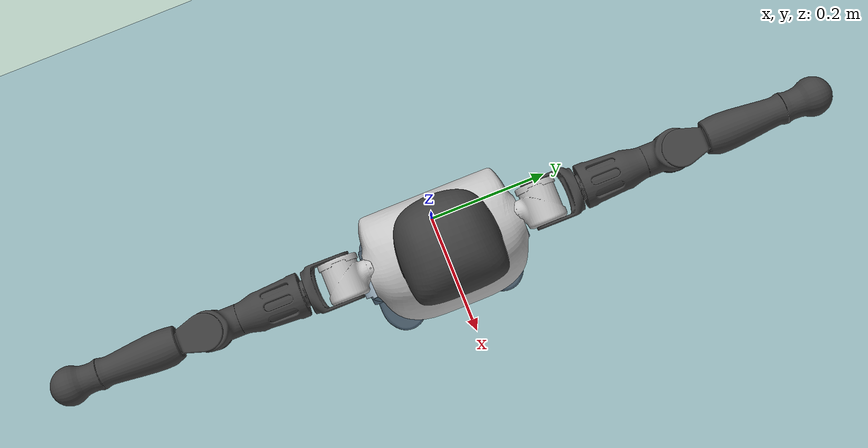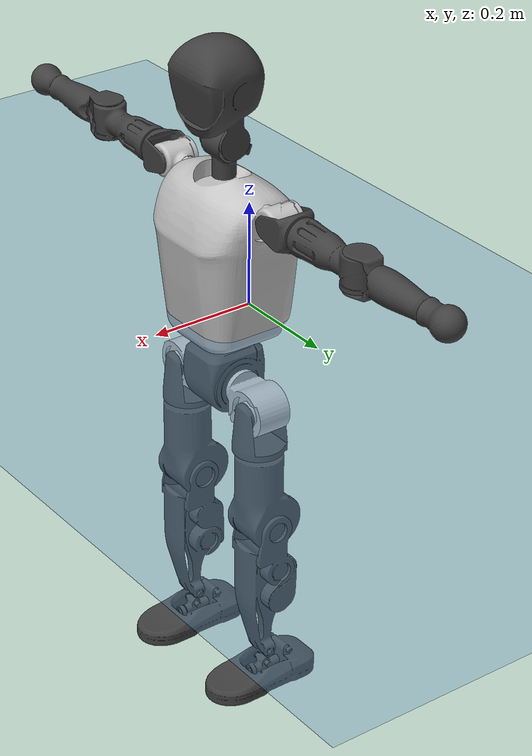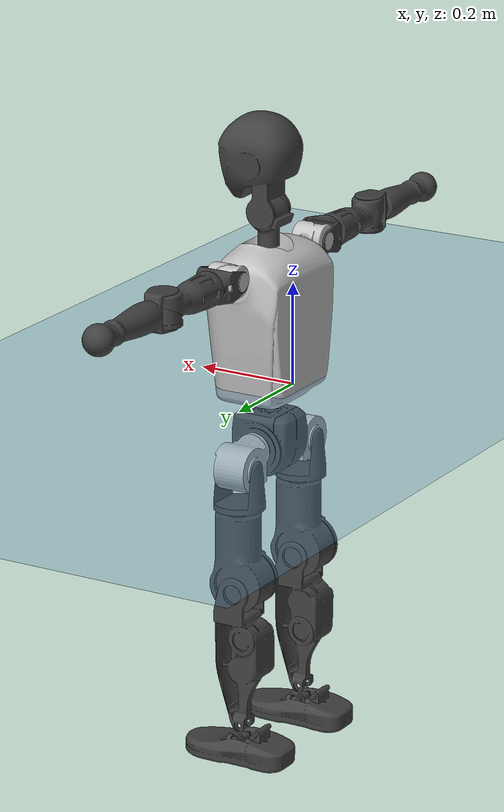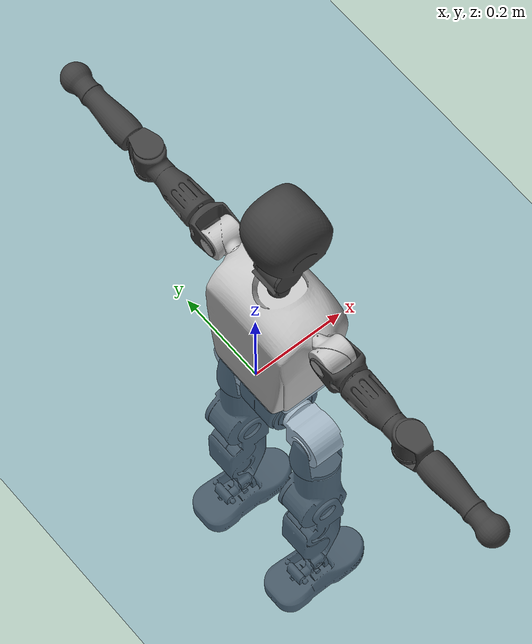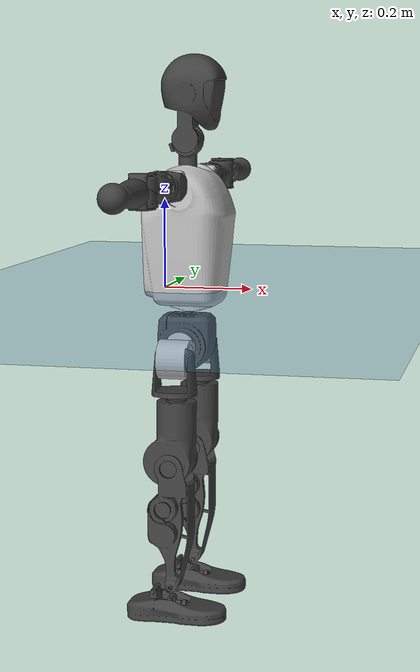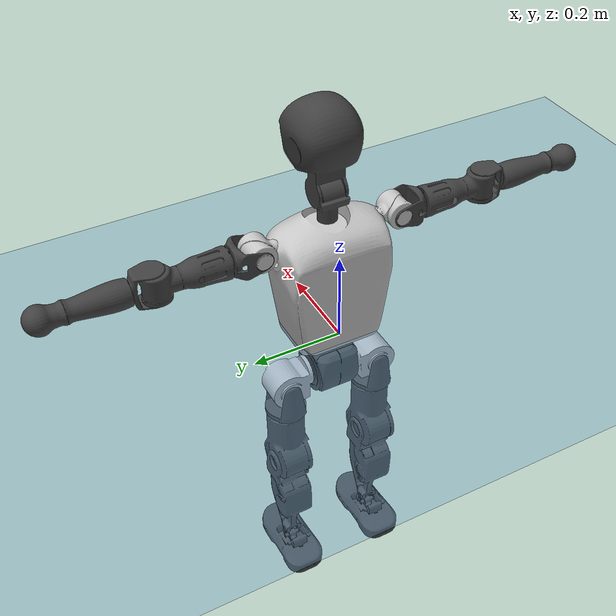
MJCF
<mujoco model="T1">
  <compiler angle="radian" assetdir="assets" balanceinertia="true" inertiafromgeom="false"/>

  <option timestep="0.005" density="1.2" viscosity="2e-05"/>

  <size nkey="1"/>

  <visual>
    <quality shadowsize="8192"/>
    <map shadowclip="0.5"/>
  </visual>

  <default>
    <default class="/">
      <joint armature="0.01" damping="0.01" frictionloss="0.1"/>
      <geom contype="0" conaffinity="0" group="1" solref="-1000 -80"/>
      <site size="0.01 0.005 0.005" group="5"/>
      <general forcelimited="true" biastype="affine" gainprm="25" biasprm="0 -25 -0.6"/>
      <default class="t1">
        <geom rgba="0.25 0.25 0.25 1"/>
        <default class="visual">
          <geom type="mesh" group="2"/>
        </default>
        <default class="collision">
          <geom group="3"/>
        </default>
        <default class="foot">
          <geom size="0.1115 0.05 0.015" type="box" condim="6" group="4" priority="1" solimp="0.015 1 0.015"/>
        </default>
        <default class="reward_collision_sphere">
          <geom group="5" rgba="1 0 0 1"/>
        </default>
      </default>
    </default>
  </default>

  <asset>
    <texture type="skybox" colorspace="auto" name="//unnamed_texture_0" builtin="gradient" rgb1="0.95 0.95 0.95" rgb2="0.95 0.95 0.95" width="100" height="600"/>
    <texture type="2d" colorspace="auto" name="texplane" builtin="checker" rgb1="0.345 0.575 0.748" rgb2="0.345 0.575 0.748" markrgb="1 1 1" width="512" height="512"/>
    <material name="MatPlane" class="/" texture="texplane" texuniform="true" texrepeat="2 2" specular="0.9"/>
    <mesh name="Trunk" class="/" file="Trunk.stl"/>
    <mesh name="H1" class="/" file="H1.stl"/>
    <mesh name="H2" class="/" file="H2.stl"/>
    <mesh name="AL1" class="/" file="AL1.stl"/>
    <mesh name="AL2" class="/" file="AL2.stl"/>
    <mesh name="AL3" class="/" file="AL3.stl"/>
    <mesh name="left_hand_link" class="/" file="left_hand_link.stl"/>
    <mesh name="AR1" class="/" file="AR1.stl"/>
    <mesh name="AR2" class="/" file="AR2.stl"/>
    <mesh name="AR3" class="/" file="AR3.stl"/>
    <mesh name="right_hand_link" class="/" file="right_hand_link.stl"/>
    <mesh name="Waist" class="/" file="Waist.stl"/>
    <mesh name="Hip_Pitch_Left" class="/" file="Hip_Pitch_Left.stl"/>
    <mesh name="Hip_Roll_Left" class="/" file="Hip_Roll_Left.stl"/>
    <mesh name="Hip_Yaw_Left" class="/" file="Hip_Yaw_Left.stl"/>
    <mesh name="Shank_Left" class="/" file="Shank_Left.stl"/>
    <mesh name="Ankle_Cross_Left" class="/" file="Ankle_Cross_Left.stl"/>
    <mesh name="left_foot_link" class="/" file="left_foot_link.stl"/>
    <mesh name="Hip_Pitch_Right" class="/" file="Hip_Pitch_Right.stl"/>
    <mesh name="Hip_Roll_Right" class="/" file="Hip_Roll_Right.stl"/>
    <mesh name="Hip_Yaw_Right" class="/" file="Hip_Yaw_Right.stl"/>
    <mesh name="Shank_Right" class="/" file="Shank_Right.stl"/>
    <mesh name="Ankle_Cross_Right" class="/" file="Ankle_Cross_Right.stl"/>
    <mesh name="right_foot_link" class="/" file="right_foot_link.stl"/>
  </asset>

  <worldbody>
    <geom name="floor" class="/" size="100 100 0.125" type="plane" group="0" material="MatPlane"/>
    <light name="toplight_shadow" class="/" pos="0 0 5" dir="0.0990148 0.0990148 -0.990148" type="directional" ambient="0.04 0.04 0.04" diffuse="0.55 0.55 0.55" specular="0.12 0.12 0.12"/>
    <light name="toplight_fill" class="/" pos="0 0 5" dir="0.0990148 0.0990148 -0.990148" type="directional" castshadow="false" ambient="0.04 0.04 0.04" diffuse="0.3 0.3 0.3" specular="0.08 0.08 0.08"/>
    <body name="trunk" childclass="t1" pos="-0.000365513 0.000493513 0.000193027" quat="0.999999 0.000450054 0.000851964 -0.00042562">
      <inertial pos="0.0451989 -0.00223542 0.116566" quat="0.999937 0.000632638 -0.0111161 -0.00131863" mass="11.561" diaginertia="0.0427413 0.092109 0.0884261"/>
      <joint name="//unnamed_joint_0" type="free" armature="0" damping="0" frictionloss="0"/>
      <geom name="//unnamed_geom_1" class="visual" rgba="0.76 0.76 0.76 1" mesh="Trunk"/>
      <geom name="//unnamed_geom_2" class="collision" size="0.0748483 0.0997978 0.149697" pos="0.0513903 0 0.132313" type="box"/>
      <geom name="//unnamed_geom_3" class="reward_collision_sphere" size="0.114767" pos="0.0513903 0 0.110261"/>
      <geom name="//unnamed_geom_4" class="reward_collision_sphere" size="0.0149697" pos="0.0513903 0.0879598 0"/>
      <geom name="//unnamed_geom_5" class="reward_collision_sphere" size="0.0149697" pos="0.0513903 -0.0879598 0"/>
      <geom name="//unnamed_geom_6" class="reward_collision_sphere" size="0.0149697" pos="0.0513903 0.110726 0.198469"/>
      <geom name="//unnamed_geom_7" class="reward_collision_sphere" size="0.0149697" pos="0.0513903 -0.110726 0.198469"/>
      <site name="imu" pos="0.00315651 -0.00334801 -0.00322919" size="0.00997978"/>
      <camera name="track" pos="0 -2.06964 0" quat="0.707107 0.707107 0 0" mode="trackcom"/>
      <camera name="ego_camera" pos="0.104494 0 0.463095" quat="-0.5 -0.5 0.5 0.5"/>
      <body name="H1" pos="0.0535516 -0.00080912 0.266457" quat="1 -0.000470005 8.86802e-05 -0.000144151">
        <inertial pos="-0.00126824 0.000600066 0.0625679" quat="0.766416 -0.0224779 0.000772965 0.641951" mass="0.432051" diaginertia="0.000108725 0.000253744 0.000235448"/>
        <joint name="AAHead_yaw" pos="0 0 0" axis="-0.00961315 0.00340812 0.999948" stiffness="0.00705721" range="-1.55168 1.57134" armature="0.00995706" damping="0.00880928" frictionloss="0.0992464"/>
        <geom name="//unnamed_geom_8" class="visual" mesh="H1"/>
        <body name="H2" pos="-0.000584733 0.00195032 0.0690221" quat="1 8.90724e-05 -3.83831e-05 -6.68157e-05">
          <inertial pos="0.00540695 0.00268 0.10847" quat="0.988479 0.106096 -0.074023 -0.0785691" mass="0.624167" diaginertia="0.000951711 0.00224007 0.00279381"/>
          <joint name="Head_pitch" pos="0 0 0" axis="0.00101886 -0.99999 -0.00441549" range="-1.22052 0.348656" armature="0.00889355" damping="0.00652889" frictionloss="0.112185"/>
          <geom name="//unnamed_geom_9" class="visual" mesh="H2"/>
          <geom name="//unnamed_geom_10" class="collision" size="0.0798382" pos="0.00856506 0 0.121287"/>
          <geom name="//unnamed_geom_11" class="reward_collision_sphere" size="0.089818" pos="0.0171301 0 0.110261"/>
        </body>
      </body>
      <body name="AL1" pos="0.051481 0.109055 0.2393" quat="1 -1.39161e-06 0.000455404 -9.72915e-06">
        <inertial pos="-0.00290816 0.0469189 0.00119379" quat="0.502101 0.496706 -0.504907 0.496232" mass="0.529768" diaginertia="0.00062853 0.00153896 0.000471813"/>
        <joint name="Left_Shoulder_Pitch" pos="0 0 0" axis="0.00415921 0.999924 -0.0115967" range="-3.31293 1.23103" armature="0.0101013" damping="0.00690233" frictionloss="0.0983196"/>
        <geom name="//unnamed_geom_12" class="visual" rgba="0.76 0.76 0.76 1" mesh="AL1"/>
        <body name="AL2" pos="-4.54994e-05 0.0481308 -0.000874197" quat="1 0.000157715 -6.14326e-07 6.27969e-05">
          <inertial pos="0.00306831 0.0396649 -0.00175655" quat="0.490137 0.508158 -0.491412 0.509957" mass="0.158415" diaginertia="0.000183513 0.000408037 0.000288566"/>
          <joint name="Left_Shoulder_Roll" pos="0 0 0" axis="-1 -1.48706e-05 3.09857e-05" range="-1.57232 1.74301" armature="0.0101691" damping="0.00537494" frictionloss="0.101163"/>
          <geom name="//unnamed_geom_13" class="visual" mesh="AL2"/>
          <body name="AL3" pos="0.000584652 0.0623719 -0.000172869" quat="1 0.000143005 7.2869e-05 0.000170651">
            <inertial pos="-0.000366093 0.0882971 9.79196e-05" quat="0.703965 0.710154 0.00948648 -0.00501084" mass="1.01288" diaginertia="0.00590935 0.0152687 0.000983848"/>
            <joint name="Left_Elbow_Pitch" pos="0 0 0" axis="-0.000779428 -0.999999 -0.00131776" range="-2.25213 2.27311" armature="0.0100311" damping="0.0229531" frictionloss="0.11139"/>
            <geom name="//unnamed_geom_14" class="visual" mesh="AL3"/>
            <geom name="//unnamed_geom_15" class="collision" size="0.0299393 0.0748483" pos="0 0.051741 0" quat="0.707105 0.707108 0 0" type="cylinder"/>
            <geom name="//unnamed_geom_16" class="reward_collision_sphere" size="0.0359272"/>
            <body name="left_hand_link" pos="0.00241641 0.15304 0.00137026" quat="1 8.25344e-05 8.89201e-05 5.22712e-05">
              <inertial pos="0.00180962 0.113017 -0.00121998" quat="0.708603 0.705588 -0.00490882 -0.00164281" mass="0.324413" diaginertia="0.00373372 0.00989591 0.0003557"/>
              <joint name="Left_Elbow_Yaw" pos="0 0 0" axis="-2.11341e-05 -0.00016887 1" range="-2.45319 0.0182771" armature="0.0100849" damping="0.00897739" frictionloss="0.0997689"/>
              <geom name="//unnamed_geom_17" class="visual" mesh="left_hand_link"/>
              <geom name="//unnamed_geom_18" class="collision" size="0.0299393 0.0873231" pos="0 0.134527 0" quat="0.707105 0.707108 0 0" type="cylinder"/>
              <geom name="//unnamed_geom_19" class="reward_collision_sphere" size="0.0498989"/>
              <geom name="//unnamed_geom_20" class="reward_collision_sphere" size="0.0349292" pos="0 0.11383 0"/>
              <geom name="//unnamed_geom_21" class="reward_collision_sphere" size="0.0349292" pos="0 0.222486 0"/>
            </body>
          </body>
        </body>
      </body>
      <body name="AR1" pos="0.0483138 -0.110758 0.241597" quat="0.999999 -0.000252473 0.001594 -0.00018514">
        <inertial pos="-0.00156848 -0.045908 -0.000888738" quat="0.504135 0.496454 -0.503338 0.496016" mass="0.541475" diaginertia="0.000639323 0.00156625 0.000490386"/>
        <joint name="Right_Shoulder_Pitch" pos="0 0 0" axis="0.0023399 -0.999997 -0.00116662" range="-1.22164 3.30612" armature="0.0104874" damping="0.000121513" frictionloss="0.103652"/>
        <geom name="//unnamed_geom_22" class="visual" rgba="0.76 0.76 0.76 1" mesh="AR1"/>
        <body name="AR2" pos="-0.000727671 -0.0477227 -0.00216314" quat="1 -0.000216752 0.000173857 -0.000861231">
          <inertial pos="0.00431753 -0.0401678 0.000722527" quat="0.513844 0.489023 -0.509865 0.486681" mass="0.158086" diaginertia="0.000183123 0.000404808 0.000286297"/>
          <joint name="Right_Shoulder_Roll" pos="0 0 0" axis="-0.999974 -0.00350124 -0.00629994" range="-1.72499 1.58406" armature="0.0100356" damping="0" frictionloss="0.0985546"/>
          <geom name="//unnamed_geom_23" class="visual" mesh="AR2"/>
          <body name="AR3" pos="-0.000993798 -0.0632797 -0.000732014" quat="1 0.000677522 -0.000663519 -0.000149983">
            <inertial pos="0.00210699 -0.0878835 -0.000834112" quat="0.708064 0.706146 0.000913584 -0.00136967" mass="1.01414" diaginertia="0.00608516 0.0157946 0.00104132"/>
            <joint name="Right_Elbow_Pitch" pos="0 0 0" axis="0.000195613 0.999999 -0.00130873" stiffness="0.00330938" range="-2.25196 2.2185" armature="0.0101038" damping="0.0116751" frictionloss="0.0970427"/>
            <geom name="//unnamed_geom_24" class="visual" mesh="AR3"/>
            <geom name="//unnamed_geom_25" class="collision" size="0.0299393 0.0748483" pos="0 -0.051741 0" quat="0.707105 0.707108 0 0" type="cylinder"/>
            <geom name="//unnamed_geom_26" class="reward_collision_sphere" size="0.0359272"/>
            <body name="right_hand_link" pos="-0.000716301 -0.152301 0.00108773" quat="1 0.000114498 0.000786299 -0.000193212">
              <inertial pos="0.00185606 -0.114426 -0.000776321" quat="0.705913 0.708298 -0.000431658 -0.00057088" mass="0.311448" diaginertia="0.00353235 0.00931745 0.000348701"/>
              <joint name="Right_Elbow_Yaw" pos="0 0 0" axis="-0.00165608 -0.001733 0.999997" stiffness="0.00193863" range="-0.00358098 2.40235" armature="0.0104302" damping="0.00458139" frictionloss="0.100919"/>
              <geom name="//unnamed_geom_27" class="visual" mesh="right_hand_link"/>
              <geom name="//unnamed_geom_28" class="collision" size="0.0299393 0.0873231" pos="0 -0.134527 0" quat="0.707105 0.707108 0 0" type="cylinder"/>
              <geom name="//unnamed_geom_29" class="reward_collision_sphere" size="0.0498989"/>
              <geom name="//unnamed_geom_30" class="reward_collision_sphere" size="0.0349292" pos="0 -0.11383 0"/>
              <geom name="//unnamed_geom_31" class="reward_collision_sphere" size="0.0349292" pos="0 -0.222486 0"/>
            </body>
          </body>
        </body>
      </body>
      <body name="Waist" pos="0.0529135 -0.00291883 -0.127606" quat="1 9.48686e-05 -3.86739e-05 0.000277554">
        <inertial pos="0.000459509 0.000653422 0.00795067" quat="0.983958 -0.000241599 -0.178278 0.0065331" mass="2.51315" diaginertia="0.00249998 0.00629393 0.00761076"/>
        <joint name="Waist" pos="0 0 0" axis="-0.00608844 -6.30227e-05 0.999981" stiffness="0.00182963" range="-1.55561 1.58908" armature="0.0102473" damping="0.000465592" frictionloss="0.099487"/>
        <geom name="//unnamed_geom_32" class="visual" mesh="Waist"/>
        <body name="Hip_Pitch_Left" pos="0.00161052 0.110289 5.32592e-05" quat="1 -1.40751e-05 -4.58083e-05 -1.35751e-05">
          <inertial pos="0.00152384 -0.00736882 -0.0220294" quat="0.976074 0.216975 0.0134979 0.00447796" mass="1.02964" diaginertia="0.000839092 0.00174603 0.00205711"/>
          <joint name="Left_Hip_Pitch" pos="0 0 0" axis="-0.000891247 0.999999 0.00125088" range="-1.80631 1.60664" armature="0.0103457" damping="0.00190002" frictionloss="0.0991917"/>
          <geom name="//unnamed_geom_33" class="visual" rgba="0.76 0.76 0.76 1" mesh="Hip_Pitch_Left"/>
          <body name="Hip_Roll_Left" pos="0.00256956 0.000342764 -0.0235211" quat="1 3.6059e-05 2.57689e-05 -1.84156e-05">
            <inertial pos="0.00121237 0.000724894 -0.0607735" quat="0.707053 -0.00467071 -0.00626659 0.707117" mass="0.391211" diaginertia="0.000831431 0.00179805 0.00083565"/>
            <joint name="Left_Hip_Roll" pos="0 0 0" axis="-0.999999 0.00141489 -0.000826747" range="-1.55229 0.24448" armature="0.00986182" damping="0.00452902" frictionloss="0.101692"/>
            <geom name="//unnamed_geom_34" class="visual" mesh="Hip_Roll_Left"/>
            <geom name="//unnamed_geom_35" class="reward_collision_sphere" size="0.0548888"/>
            <body name="Hip_Yaw_Left" pos="-0.000289301 0.00157792 -0.0883632" quat="1 2.05734e-05 -0.00013094 0.000162531">
              <inertial pos="-0.00571291 -0.00024276 -0.0994538" quat="0.702298 -0.0310675 -0.0292979 0.710601" mass="2.10625" diaginertia="0.0116346 0.0289812 0.00417035"/>
              <joint name="Left_Hip_Yaw" pos="0 0 0" axis="0.0021556 0.000424152 -0.999998" range="-0.996246 1.05577" armature="0.00992143" damping="0" frictionloss="0.099414"/>
              <geom name="//unnamed_geom_36" class="visual" mesh="Hip_Yaw_Left"/>
              <geom name="//unnamed_geom_37" class="collision" size="0.0498989 0.0798382" type="cylinder"/>
              <body name="Shank_Left" pos="-0.0118352 0.00109469 -0.150231" quat="1 0.000214818 -7.94989e-05 0.000111718">
                <inertial pos="-0.00576544 0.000717004 -0.138624" quat="0.997705 0.000475459 -0.0244694 0.0631395" mass="1.74989" diaginertia="0.0162253 0.0411821 0.00300713"/>
                <joint name="Left_Knee_Pitch" pos="0 0 0" axis="0.00304285 0.999978 0.00583836" stiffness="0.00341567" range="-0.00247849 2.34797" armature="0.00993194" damping="0.0164223" frictionloss="0.104844"/>
                <geom name="//unnamed_geom_38" class="visual" mesh="Shank_Left"/>
                <geom name="//unnamed_geom_39" class="collision" size="0.0498989 0.0748483" pos="0 0 -0.132313" type="cylinder"/>
                <geom name="//unnamed_geom_40" class="reward_collision_sphere" size="0.0648686"/>
                <body name="Ankle_Cross_Left" pos="0.000948457 0.000835551 -0.31045" quat="1 -0.000240257 -0.000162855 0.000469649">
                  <inertial pos="-0.00512266 0.00224777 -0.00887754" quat="0.443161 0.550728 0.551382 0.443042" mass="0.0716343" diaginertia="1.32964e-05 2.95687e-05 1.84638e-05"/>
                  <joint name="Left_Ankle_Pitch" pos="0 0 0" axis="-0.00635189 0.99998 0.000183414" range="-0.879476 0.335364" armature="0.00909635" damping="0.00314903" frictionloss="0.0992599"/>
                  <geom name="//unnamed_geom_41" class="visual" mesh="Ankle_Cross_Left"/>
                  <body name="left_foot_link" pos="0.000701899 -0.000655483 -0.0114727" quat="0.999999 -0.000300359 0.000549075 0.00106823">
                    <inertial pos="-0.0022687 -0.00025734 -0.00907575" quat="-0.00042563 0.621793 2.16603e-05 0.783182" mass="0.67491" diaginertia="0.00123367 0.00278762 0.00360062"/>
                    <joint name="Left_Ankle_Roll" pos="0 0 0" axis="-0.999999 -0.00103432 -0.000168597" range="-0.480034 0.39751" armature="0.00986359" damping="0.00894177" frictionloss="0.089556"/>
                    <geom name="//unnamed_geom_42" class="visual" mesh="left_foot_link"/>
                    <geom name="left_foot" class="foot" size="0.104561 0.0500631 0.0152494" pos="0.00856506 0 -0.0165391"/>
                    <geom name="//unnamed_geom_44" class="reward_collision_sphere" size="0.0518949" pos="0.00856506 0 -0.0165391"/>
                    <geom name="//unnamed_geom_45" class="reward_collision_sphere" size="0.0299393" pos="0.081368 -0.0238009 -0.0165391"/>
                    <geom name="//unnamed_geom_46" class="reward_collision_sphere" size="0.0299393" pos="-0.0599554 -0.0238009 -0.0165391"/>
                    <site name="left_foot" class="foot" pos="0.00856506 0 -0.0165391" size="0.00997978"/>
                  </body>
                </body>
              </body>
            </body>
          </body>
        </body>
        <body name="Hip_Pitch_Right" pos="-0.00246378 -0.111544 7.83016e-05" quat="1 -5.57907e-05 -9.95763e-07 0.000431493">
          <inertial pos="-0.000510333 0.00684283 -0.0196497" quat="0.9736 -0.227745 0.015133 -0.00258372" mass="1.01064" diaginertia="0.000853152 0.00174203 0.00208037"/>
          <joint name="Right_Hip_Pitch" pos="0 0 0" axis="0.00132174 -0.999998 0.00150421" stiffness="0.00495576" range="-1.55271 1.80586" armature="0.0102939" damping="0.00712605" frictionloss="0.104137"/>
          <geom name="//unnamed_geom_47" class="visual" rgba="0.76 0.76 0.76 1" mesh="Hip_Pitch_Right"/>
          <body name="Hip_Roll_Right" pos="0.00205719 -0.00212093 -0.0231817" quat="1 -1.94241e-05 -5.4731e-05 -1.56614e-05">
            <inertial pos="0.000142321 -0.00104724 -0.058349" quat="0.707368 -0.00799994 -0.00534125 0.70678" mass="0.392259" diaginertia="0.000800641 0.00182324 0.000840826"/>
            <joint name="Right_Hip_Roll" pos="0 0 0" axis="-1 0.000499321 -0.00041638" stiffness="0.00867025" range="-0.199517 1.52314" armature="0.00977649" damping="0" frictionloss="0.0885296"/>
            <geom name="//unnamed_geom_48" class="visual" mesh="Hip_Roll_Right"/>
            <geom name="//unnamed_geom_49" class="reward_collision_sphere" size="0.0548888"/>
            <body name="Hip_Yaw_Right" pos="0.00244316 -0.00100084 -0.0898092" quat="1 -2.10949e-05 1.81943e-05 -2.18576e-05">
              <inertial pos="-0.00579119 -0.000792624 -0.0980013" quat="0.711078 -0.020578 -0.0362403 0.701877" mass="2.13062" diaginertia="0.0115166 0.0300065 0.00410141"/>
              <joint name="Right_Hip_Yaw" pos="0 0 0" axis="-0.00607894 -0.00606986 -0.999963" stiffness="0.00232878" range="-0.997766 1.00676" armature="0.00944201" damping="0.0123317" frictionloss="0.102444"/>
              <geom name="//unnamed_geom_50" class="visual" mesh="Hip_Yaw_Right"/>
              <geom name="//unnamed_geom_51" class="collision" size="0.0498989 0.0798382" type="cylinder"/>
              <body name="Shank_Right" pos="-0.00944284 -0.000571241 -0.147785" quat="1 2.0302e-06 1.34987e-05 0.000237712">
                <inertial pos="-0.00577378 0.000447078 -0.135474" quat="0.998828 -0.00225569 -0.033216 -0.0351302" mass="1.81737" diaginertia="0.0166607 0.0421178 0.00324717"/>
                <joint name="Right_Knee_Pitch" pos="0 0 0" axis="-0.00562274 -0.999969 -0.00545868" range="-2.33772 0.00496431" armature="0.00996683" damping="0.0192632" frictionloss="0.0972888"/>
                <geom name="//unnamed_geom_52" class="visual" mesh="Shank_Right"/>
                <geom name="//unnamed_geom_53" class="collision" size="0.0498989 0.0748483" pos="0 0 -0.132313" type="cylinder"/>
                <geom name="//unnamed_geom_54" class="reward_collision_sphere" size="0.0648686"/>
                <body name="Ankle_Cross_Right" pos="-0.000395442 -0.000682503 -0.310305" quat="1 -0.000438828 -0.000596912 0.000260358">
                  <inertial pos="-0.00358936 0.00167394 -0.00889692" quat="0.44313 0.550988 0.550923 0.443319" mass="0.0727762" diaginertia="1.29734e-05 3.04485e-05 1.82711e-05"/>
                  <joint name="Right_Ankle_Pitch" pos="0 0 0" axis="0.00136847 -0.999998 -0.00121022" range="-0.399876 0.868967" armature="0.0101335" damping="0.00662597" frictionloss="0.0998024"/>
                  <geom name="//unnamed_geom_55" class="visual" mesh="Ankle_Cross_Right"/>
                  <body name="right_foot_link" pos="0.00199133 0.000358241 -0.0134607" quat="1 4.01232e-06 8.44211e-06 1.67832e-05">
                    <inertial pos="0.000103988 0.00125639 -0.00986121" quat="0.00230601 0.620898 0.00141078 0.783887" mass="0.714975" diaginertia="0.00127905 0.00288867 0.00358238"/>
                    <joint name="Right_Ankle_Roll" pos="0 0 0" axis="-0.999983 0.00563906 0.00146775" range="-0.433456 0.44114" armature="0.0103087" damping="0.00871879" frictionloss="0.0881268"/>
                    <geom name="//unnamed_geom_56" class="visual" mesh="right_foot_link"/>
                    <geom name="right_foot" class="foot" size="0.0998486 0.0471127 0.0150797" pos="0.00856506 0 -0.0165391"/>
                    <geom name="//unnamed_geom_58" class="reward_collision_sphere" size="0.0399191"/>
                    <geom name="//unnamed_geom_59" class="reward_collision_sphere" size="0.0299393" pos="0.00856506 0 -0.0165391"/>
                    <geom name="//unnamed_geom_60" class="reward_collision_sphere" size="0.0299393" pos="0.081368 0.0238009 -0.0165391"/>
                    <geom name="//unnamed_geom_61" class="reward_collision_sphere" size="0.0299393" pos="-0.0599554 0.0238009 -0.0165391"/>
                    <site name="right_foot" class="foot" pos="0.00856506 0 -0.0165391" size="0.00997978"/>
                  </body>
                </body>
              </body>
            </body>
          </body>
        </body>
      </body>
    </body>
  </worldbody>

  <contact>
    <pair class="/" geom1="floor" geom2="left_foot" name="//unnamed_contact_0"/>
    <pair class="/" geom1="floor" geom2="right_foot" name="//unnamed_contact_1"/>
  </contact>

  <actuator>
    <general name="AAHead_yaw" class="/" joint="AAHead_yaw" forcerange="-7.25606 7.25606" gainprm="23.3365" biasprm="0 -23.3365 -0.575049"/>
    <general name="Head_pitch" class="/" joint="Head_pitch" forcerange="-6.71579 6.71579" gainprm="23.3365" biasprm="0 -23.3365 -0.575049"/>
    <general name="Left_Shoulder_Pitch" class="/" joint="Left_Shoulder_Pitch" forcerange="-16.1911 16.1911" gainprm="23.3365" biasprm="0 -23.3365 -0.575049"/>
    <general name="Left_Shoulder_Roll" class="/" joint="Left_Shoulder_Roll" forcerange="-18.06 18.06" gainprm="23.3365" biasprm="0 -23.3365 -0.575049"/>
    <general name="Left_Elbow_Pitch" class="/" joint="Left_Elbow_Pitch" forcerange="-18.4032 18.4032" gainprm="23.3365" biasprm="0 -23.3365 -0.575049"/>
    <general name="Left_Elbow_Yaw" class="/" joint="Left_Elbow_Yaw" forcerange="-18.257 18.257" gainprm="23.3365" biasprm="0 -23.3365 -0.575049"/>
    <general name="Right_Shoulder_Pitch" class="/" joint="Right_Shoulder_Pitch" forcerange="-18.3286 18.3286" gainprm="23.3365" biasprm="0 -23.3365 -0.575049"/>
    <general name="Right_Shoulder_Roll" class="/" joint="Right_Shoulder_Roll" forcerange="-18.0278 18.0278" gainprm="23.3365" biasprm="0 -23.3365 -0.575049"/>
    <general name="Right_Elbow_Pitch" class="/" joint="Right_Elbow_Pitch" forcerange="-18.1953 18.1953" gainprm="23.3365" biasprm="0 -23.3365 -0.575049"/>
    <general name="Right_Elbow_Yaw" class="/" joint="Right_Elbow_Yaw" forcerange="-18.053 18.053" gainprm="23.3365" biasprm="0 -23.3365 -0.575049"/>
    <general name="Waist" class="/" joint="Waist" forcerange="-30.5564 30.5564" gainprm="23.3365" biasprm="0 -23.3365 -0.575049"/>
    <general name="Left_Hip_Pitch" class="/" joint="Left_Hip_Pitch" forcerange="-43.9339 43.9339" gainprm="23.3365" biasprm="0 -23.3365 -0.575049"/>
    <general name="Left_Hip_Roll" class="/" joint="Left_Hip_Roll" forcerange="-30.4428 30.4428" gainprm="23.3365" biasprm="0 -23.3365 -0.575049"/>
    <general name="Left_Hip_Yaw" class="/" joint="Left_Hip_Yaw" forcerange="-30.3966 30.3966" gainprm="23.3365" biasprm="0 -23.3365 -0.575049"/>
    <general name="Left_Knee_Pitch" class="/" joint="Left_Knee_Pitch" forcerange="-57.486 57.486" gainprm="23.3365" biasprm="0 -23.3365 -0.575049"/>
    <general name="Left_Ankle_Pitch" class="/" joint="Left_Ankle_Pitch" forcerange="-21.6413 21.6413" gainprm="23.3365" biasprm="0 -23.3365 -0.575049"/>
    <general name="Left_Ankle_Roll" class="/" joint="Left_Ankle_Roll" forcerange="-13.917 13.917" gainprm="23.3365" biasprm="0 -23.3365 -0.575049"/>
    <general name="Right_Hip_Pitch" class="/" joint="Right_Hip_Pitch" forcerange="-45.4894 45.4894" gainprm="23.3365" biasprm="0 -23.3365 -0.575049"/>
    <general name="Right_Hip_Roll" class="/" joint="Right_Hip_Roll" forcerange="-32.0305 32.0305" gainprm="23.3365" biasprm="0 -23.3365 -0.575049"/>
    <general name="Right_Hip_Yaw" class="/" joint="Right_Hip_Yaw" forcerange="-28.8583 28.8583" gainprm="23.3365" biasprm="0 -23.3365 -0.575049"/>
    <general name="Right_Knee_Pitch" class="/" joint="Right_Knee_Pitch" forcerange="-58.5256 58.5256" gainprm="23.3365" biasprm="0 -23.3365 -0.575049"/>
    <general name="Right_Ankle_Pitch" class="/" joint="Right_Ankle_Pitch" forcerange="-19.7216 19.7216" gainprm="23.3365" biasprm="0 -23.3365 -0.575049"/>
    <general name="Right_Ankle_Roll" class="/" joint="Right_Ankle_Roll" forcerange="-15.8223 15.8223" gainprm="23.3365" biasprm="0 -23.3365 -0.575049"/>
  </actuator>

  <sensor>
    <gyro site="imu" name="imu_angular_velocity"/>
    <velocimeter site="imu" name="imu_linear_velocity"/>
    <framelinvel objtype="site" objname="left_foot" name="left_foot_global_linear_velocity"/>
    <framelinvel objtype="site" objname="right_foot" name="right_foot_global_linear_velocity"/>
  </sensor>

  <keyframe>
    <key name="home" qpos="0 0 0.6385 1 0 0 0 0 0 0 1.4 0 -0.4 0 -1.4 0 0.4 0 -0.4 0 0 0.8 -0.4 0 0.4 0 0 -0.8 0.4 0"/>
  </keyframe>
</mujoco>
